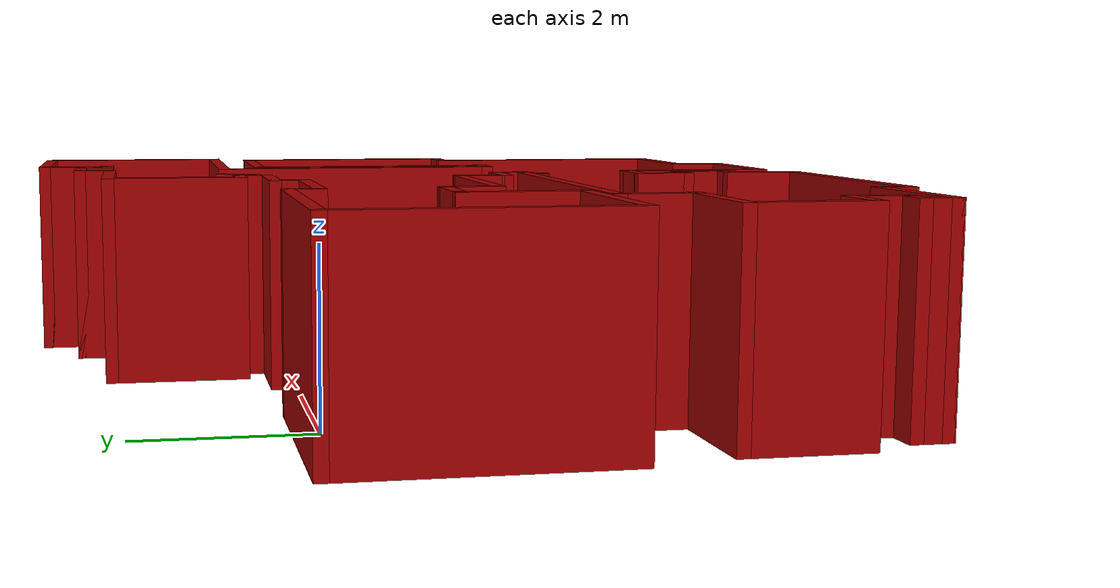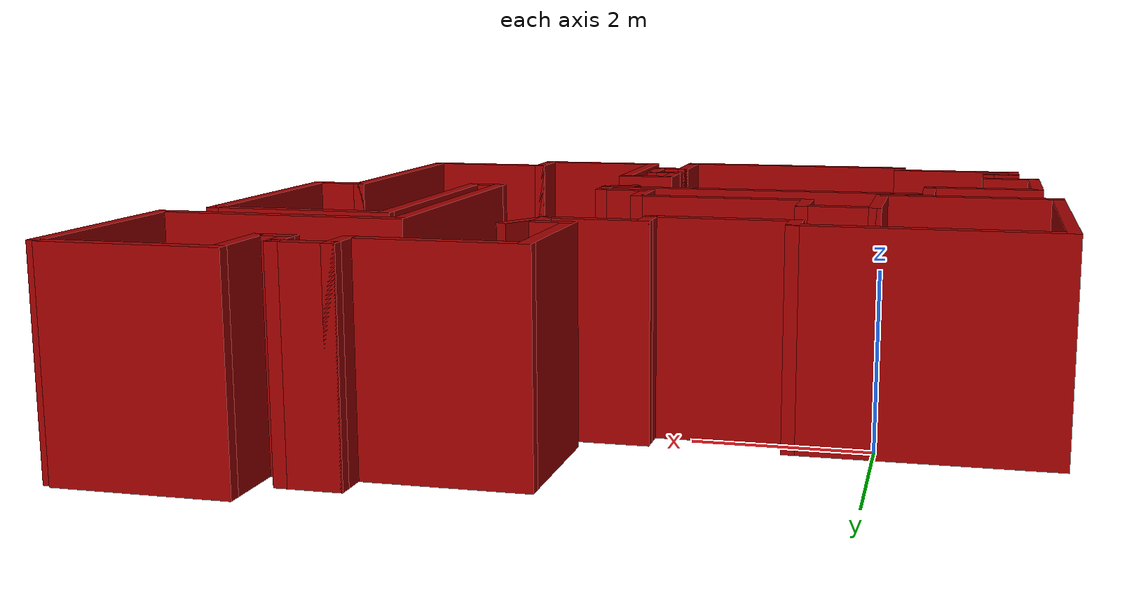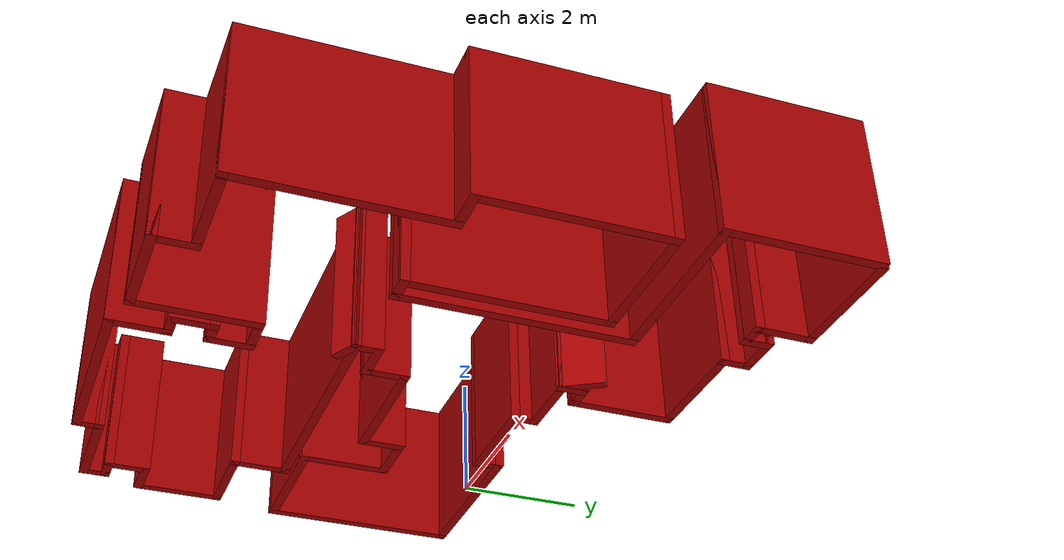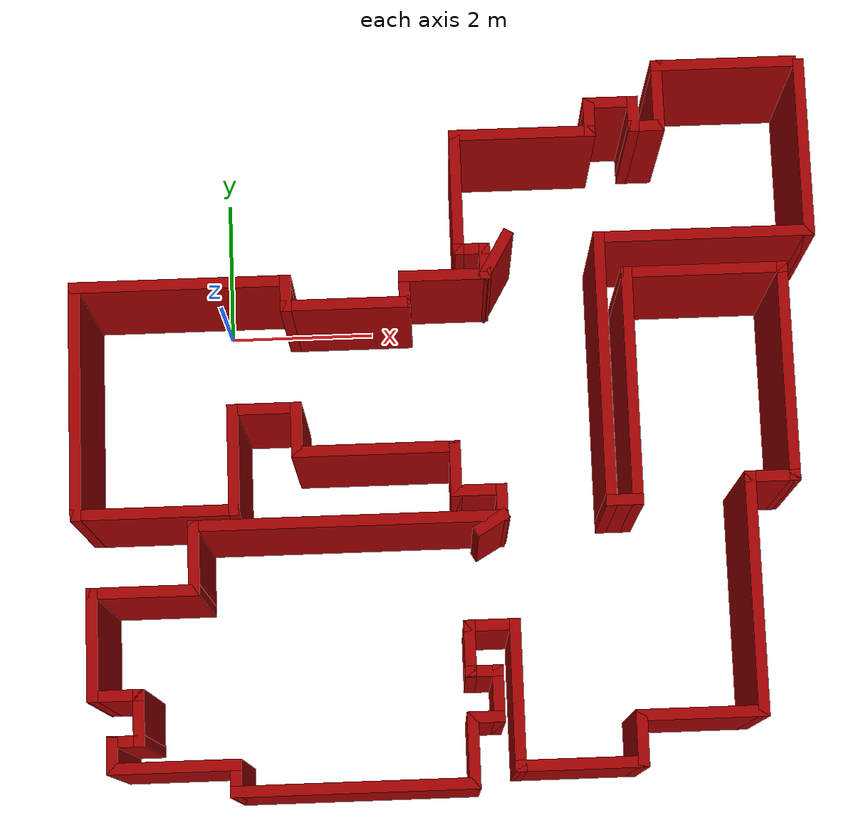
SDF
<?xml version='1.0'?>
<sdf version='1.6'>
  <model name='map_139'>
    <pose frame=''>3.03123 -1.74659 0 0 -0 0</pose>
    <link name='Wall_0'>
      <collision name='Wall_0_Collision'>
        <geometry>
          <box>
            <size>2 0.15 2.5</size>
          </box>
        </geometry>
        <pose frame=''>0 0 1.25 0 -0 0</pose>
      </collision>
      <visual name='Wall_0_Visual'>
        <pose frame=''>0 0 1.25 0 -0 0</pose>
        <geometry>
          <box>
            <size>2 0.15 2.5</size>
          </box>
        </geometry>
        <material>
          <script>
            <uri>file://media/materials/scripts/gazebo.material</uri>
            <name>Gazebo/Grey</name>
          </script>
          <ambient>0.643137 0 0 1</ambient>
        </material>
        <meta>
          <layer>0</layer>
        </meta>
      </visual>
      <pose frame=''>3.95 4.82313 0 0 -0 3.14159</pose>
    </link>
    <link name='Wall_1'>
      <collision name='Wall_1_Collision'>
        <geometry>
          <box>
            <size>1 0.15 2.5</size>
          </box>
        </geometry>
        <pose frame=''>0 0 1.25 0 -0 0</pose>
      </collision>
      <visual name='Wall_1_Visual'>
        <pose frame=''>0 0 1.25 0 -0 0</pose>
        <geometry>
          <box>
            <size>1 0.15 2.5</size>
          </box>
        </geometry>
        <material>
          <script>
            <uri>file://media/materials/scripts/gazebo.material</uri>
            <name>Gazebo/Grey</name>
          </script>
          <ambient>0.643137 0 0 1</ambient>
        </material>
        <meta>
          <layer>0</layer>
        </meta>
      </visual>
      <pose frame=''>3.025 4.39813 0 0 -0 -1.5708</pose>
    </link>
    <link name='Wall_10'>
      <collision name='Wall_10_Collision'>
        <geometry>
          <box>
            <size>2 0.15 2.5</size>
          </box>
        </geometry>
        <pose frame=''>0 0 1.25 0 -0 0</pose>
      </collision>
      <visual name='Wall_10_Visual'>
        <pose frame=''>0 0 1.25 0 -0 0</pose>
        <geometry>
          <box>
            <size>2 0.15 2.5</size>
          </box>
        </geometry>
        <material>
          <script>
            <uri>file://media/materials/scripts/gazebo.material</uri>
            <name>Gazebo/Grey</name>
          </script>
          <ambient>0.643137 0 0 1</ambient>
        </material>
        <meta>
          <layer>0</layer>
        </meta>
      </visual>
      <pose frame=''>1.15 3.92687 0 0 -0 3.14159</pose>
    </link>
    <link name='Wall_11'>
      <collision name='Wall_11_Collision'>
        <geometry>
          <box>
            <size>1.75 0.15 2.5</size>
          </box>
        </geometry>
        <pose frame=''>0 0 1.25 0 -0 0</pose>
      </collision>
      <visual name='Wall_11_Visual'>
        <pose frame=''>0 0 1.25 0 -0 0</pose>
        <geometry>
          <box>
            <size>1.75 0.15 2.5</size>
          </box>
        </geometry>
        <material>
          <script>
            <uri>file://media/materials/scripts/gazebo.material</uri>
            <name>Gazebo/Grey</name>
          </script>
          <ambient>0.643137 0 0 1</ambient>
        </material>
        <meta>
          <layer>0</layer>
        </meta>
      </visual>
      <pose frame=''>0.225 3.12687 0 0 -0 -1.5708</pose>
    </link>
    <link name='Wall_12'>
      <collision name='Wall_12_Collision'>
        <geometry>
          <box>
            <size>0.5 0.15 2.5</size>
          </box>
        </geometry>
        <pose frame=''>0 0 1.25 0 -0 0</pose>
      </collision>
      <visual name='Wall_12_Visual'>
        <pose frame=''>0 0 1.25 0 -0 0</pose>
        <geometry>
          <box>
            <size>0.5 0.15 2.5</size>
          </box>
        </geometry>
        <material>
          <script>
            <uri>file://media/materials/scripts/gazebo.material</uri>
            <name>Gazebo/Grey</name>
          </script>
          <ambient>0.643137 0 0 1</ambient>
        </material>
        <meta>
          <layer>0</layer>
        </meta>
      </visual>
      <pose frame=''>0.4 2.32687 0 0 -0 0</pose>
    </link>
    <link name='Wall_15'>
      <collision name='Wall_15_Collision'>
        <geometry>
          <box>
            <size>0.5 0.15 2.5</size>
          </box>
        </geometry>
        <pose frame=''>0 0 1.25 0 -0 0</pose>
      </collision>
      <visual name='Wall_15_Visual'>
        <pose frame=''>0 0 1.25 0 -0 0</pose>
        <geometry>
          <box>
            <size>0.5 0.15 2.5</size>
          </box>
        </geometry>
        <material>
          <script>
            <uri>file://media/materials/scripts/gazebo.material</uri>
            <name>Gazebo/Grey</name>
          </script>
          <ambient>0.643137 0 0 1</ambient>
        </material>
        <meta>
          <layer>0</layer>
        </meta>
      </visual>
      <pose frame=''>0.575 2.15187 0 0 -0 -1.5708</pose>
    </link>
    <link name='Wall_16'>
      <collision name='Wall_16_Collision'>
        <geometry>
          <box>
            <size>1.25 0.15 2.5</size>
          </box>
        </geometry>
        <pose frame=''>0 0 1.25 0 -0 0</pose>
      </collision>
      <visual name='Wall_16_Visual'>
        <pose frame=''>0 0 1.25 0 -0 0</pose>
        <geometry>
          <box>
            <size>1.25 0.15 2.5</size>
          </box>
        </geometry>
        <material>
          <script>
            <uri>file://media/materials/scripts/gazebo.material</uri>
            <name>Gazebo/Grey</name>
          </script>
          <ambient>0.643137 0 0 1</ambient>
        </material>
        <meta>
          <layer>0</layer>
        </meta>
      </visual>
      <pose frame=''>0.025 1.97687 0 0 -0 3.14159</pose>
    </link>
    <link name='Wall_17'>
      <collision name='Wall_17_Collision'>
        <geometry>
          <box>
            <size>0.5 0.15 2.5</size>
          </box>
        </geometry>
        <pose frame=''>0 0 1.25 0 -0 0</pose>
      </collision>
      <visual name='Wall_17_Visual'>
        <pose frame=''>0 0 1.25 0 -0 0</pose>
        <geometry>
          <box>
            <size>0.5 0.15 2.5</size>
          </box>
        </geometry>
        <material>
          <script>
            <uri>file://media/materials/scripts/gazebo.material</uri>
            <name>Gazebo/Grey</name>
          </script>
          <ambient>0.643137 0 0 1</ambient>
        </material>
        <meta>
          <layer>0</layer>
        </meta>
      </visual>
      <pose frame=''>-0.525 1.80187 0 0 -0 -1.5708</pose>
    </link>
    <link name='Wall_18'>
      <collision name='Wall_18_Collision'>
        <geometry>
          <box>
            <size>1.75 0.15 2.5</size>
          </box>
        </geometry>
        <pose frame=''>0 0 1.25 0 -0 0</pose>
      </collision>
      <visual name='Wall_18_Visual'>
        <pose frame=''>0 0 1.25 0 -0 0</pose>
        <geometry>
          <box>
            <size>1.75 0.15 2.5</size>
          </box>
        </geometry>
        <material>
          <script>
            <uri>file://media/materials/scripts/gazebo.material</uri>
            <name>Gazebo/Grey</name>
          </script>
          <ambient>0.643137 0 0 1</ambient>
        </material>
        <meta>
          <layer>0</layer>
        </meta>
      </visual>
      <pose frame=''>-1.325 1.62687 0 0 -0 3.14159</pose>
    </link>
    <link name='Wall_19'>
      <collision name='Wall_19_Collision'>
        <geometry>
          <box>
            <size>0.5 0.15 2.5</size>
          </box>
        </geometry>
        <pose frame=''>0 0 1.25 0 -0 0</pose>
      </collision>
      <visual name='Wall_19_Visual'>
        <pose frame=''>0 0 1.25 0 -0 0</pose>
        <geometry>
          <box>
            <size>0.5 0.15 2.5</size>
          </box>
        </geometry>
        <material>
          <script>
            <uri>file://media/materials/scripts/gazebo.material</uri>
            <name>Gazebo/Grey</name>
          </script>
          <ambient>0.643137 0 0 1</ambient>
        </material>
        <meta>
          <layer>0</layer>
        </meta>
      </visual>
      <pose frame=''>-2.125 1.80187 0 0 -0 1.5708</pose>
    </link>
    <link name='Wall_2'>
      <collision name='Wall_2_Collision'>
        <geometry>
          <box>
            <size>0.5 0.15 2.5</size>
          </box>
        </geometry>
        <pose frame=''>0 0 1.25 0 -0 0</pose>
      </collision>
      <visual name='Wall_2_Visual'>
        <pose frame=''>0 0 1.25 0 -0 0</pose>
        <geometry>
          <box>
            <size>0.5 0.15 2.5</size>
          </box>
        </geometry>
        <material>
          <script>
            <uri>file://media/materials/scripts/gazebo.material</uri>
            <name>Gazebo/Grey</name>
          </script>
          <ambient>0.643137 0 0 1</ambient>
        </material>
        <meta>
          <layer>0</layer>
        </meta>
      </visual>
      <pose frame=''>2.85 3.97313 0 0 -0 3.14159</pose>
    </link>
    <link name='Wall_20'>
      <collision name='Wall_20_Collision'>
        <geometry>
          <box>
            <size>3 0.15 2.5</size>
          </box>
        </geometry>
        <pose frame=''>0 0 1.25 0 -0 0</pose>
      </collision>
      <visual name='Wall_20_Visual'>
        <pose frame=''>0 0 1.25 0 -0 0</pose>
        <geometry>
          <box>
            <size>3 0.15 2.5</size>
          </box>
        </geometry>
        <material>
          <script>
            <uri>file://media/materials/scripts/gazebo.material</uri>
            <name>Gazebo/Grey</name>
          </script>
          <ambient>0.643137 0 0 1</ambient>
        </material>
        <meta>
          <layer>0</layer>
        </meta>
      </visual>
      <pose frame=''>-3.55 1.97687 0 0 -0 3.14159</pose>
    </link>
    <link name='Wall_21'>
      <collision name='Wall_21_Collision'>
        <geometry>
          <box>
            <size>3.25 0.15 2.5</size>
          </box>
        </geometry>
        <pose frame=''>0 0 1.25 0 -0 0</pose>
      </collision>
      <visual name='Wall_21_Visual'>
        <pose frame=''>0 0 1.25 0 -0 0</pose>
        <geometry>
          <box>
            <size>3.25 0.15 2.5</size>
          </box>
        </geometry>
        <material>
          <script>
            <uri>file://media/materials/scripts/gazebo.material</uri>
            <name>Gazebo/Grey</name>
          </script>
          <ambient>0.643137 0 0 1</ambient>
        </material>
        <meta>
          <layer>0</layer>
        </meta>
      </visual>
      <pose frame=''>-4.975 0.426869 0 0 -0 -1.5708</pose>
    </link>
    <link name='Wall_22'>
      <collision name='Wall_22_Collision'>
        <geometry>
          <box>
            <size>2.25 0.15 2.5</size>
          </box>
        </geometry>
        <pose frame=''>0 0 1.25 0 -0 0</pose>
      </collision>
      <visual name='Wall_22_Visual'>
        <pose frame=''>0 0 1.25 0 -0 0</pose>
        <geometry>
          <box>
            <size>2.25 0.15 2.5</size>
          </box>
        </geometry>
        <material>
          <script>
            <uri>file://media/materials/scripts/gazebo.material</uri>
            <name>Gazebo/Grey</name>
          </script>
          <ambient>0.643137 0 0 1</ambient>
        </material>
        <meta>
          <layer>0</layer>
        </meta>
      </visual>
      <pose frame=''>-3.925 -1.12313 0 0 -0 0</pose>
    </link>
    <link name='Wall_23'>
      <collision name='Wall_23_Collision'>
        <geometry>
          <box>
            <size>1.5 0.15 2.5</size>
          </box>
        </geometry>
        <pose frame=''>0 0 1.25 0 -0 0</pose>
      </collision>
      <visual name='Wall_23_Visual'>
        <pose frame=''>0 0 1.25 0 -0 0</pose>
        <geometry>
          <box>
            <size>1.5 0.15 2.5</size>
          </box>
        </geometry>
        <material>
          <script>
            <uri>file://media/materials/scripts/gazebo.material</uri>
            <name>Gazebo/Grey</name>
          </script>
          <ambient>0.643137 0 0 1</ambient>
        </material>
        <meta>
          <layer>0</layer>
        </meta>
      </visual>
      <pose frame=''>-2.875 -0.448131 0 0 -0 1.5708</pose>
    </link>
    <link name='Wall_24'>
      <collision name='Wall_24_Collision'>
        <geometry>
          <box>
            <size>1 0.15 2.5</size>
          </box>
        </geometry>
        <pose frame=''>0 0 1.25 0 -0 0</pose>
      </collision>
      <visual name='Wall_24_Visual'>
        <pose frame=''>0 0 1.25 0 -0 0</pose>
        <geometry>
          <box>
            <size>1 0.15 2.5</size>
          </box>
        </geometry>
        <material>
          <script>
            <uri>file://media/materials/scripts/gazebo.material</uri>
            <name>Gazebo/Grey</name>
          </script>
          <ambient>0.643137 0 0 1</ambient>
        </material>
        <meta>
          <layer>0</layer>
        </meta>
      </visual>
      <pose frame=''>-2.45 0.226869 0 0 -0 0</pose>
    </link>
    <link name='Wall_25'>
      <collision name='Wall_25_Collision'>
        <geometry>
          <box>
            <size>0.75 0.15 2.5</size>
          </box>
        </geometry>
        <pose frame=''>0 0 1.25 0 -0 0</pose>
      </collision>
      <visual name='Wall_25_Visual'>
        <pose frame=''>0 0 1.25 0 -0 0</pose>
        <geometry>
          <box>
            <size>0.75 0.15 2.5</size>
          </box>
        </geometry>
        <material>
          <script>
            <uri>file://media/materials/scripts/gazebo.material</uri>
            <name>Gazebo/Grey</name>
          </script>
          <ambient>0.643137 0 0 1</ambient>
        </material>
        <meta>
          <layer>0</layer>
        </meta>
      </visual>
      <pose frame=''>-2.025 -0.073131 0 0 -0 -1.5708</pose>
    </link>
    <link name='Wall_26'>
      <collision name='Wall_26_Collision'>
        <geometry>
          <box>
            <size>2.25 0.15 2.5</size>
          </box>
        </geometry>
        <pose frame=''>0 0 1.25 0 -0 0</pose>
      </collision>
      <visual name='Wall_26_Visual'>
        <pose frame=''>0 0 1.25 0 -0 0</pose>
        <geometry>
          <box>
            <size>2.25 0.15 2.5</size>
          </box>
        </geometry>
        <material>
          <script>
            <uri>file://media/materials/scripts/gazebo.material</uri>
            <name>Gazebo/Grey</name>
          </script>
          <ambient>0.643137 0 0 1</ambient>
        </material>
        <meta>
          <layer>0</layer>
        </meta>
      </visual>
      <pose frame=''>-0.975 -0.373131 0 0 -0 0</pose>
    </link>
    <link name='Wall_27'>
      <collision name='Wall_27_Collision'>
        <geometry>
          <box>
            <size>0.75 0.15 2.5</size>
          </box>
        </geometry>
        <pose frame=''>0 0 1.25 0 -0 0</pose>
      </collision>
      <visual name='Wall_27_Visual'>
        <pose frame=''>0 0 1.25 0 -0 0</pose>
        <geometry>
          <box>
            <size>0.75 0.15 2.5</size>
          </box>
        </geometry>
        <material>
          <script>
            <uri>file://media/materials/scripts/gazebo.material</uri>
            <name>Gazebo/Grey</name>
          </script>
          <ambient>0.643137 0 0 1</ambient>
        </material>
        <meta>
          <layer>0</layer>
        </meta>
      </visual>
      <pose frame=''>0.075 -0.673131 0 0 -0 -1.5708</pose>
    </link>
    <link name='Wall_28'>
      <collision name='Wall_28_Collision'>
        <geometry>
          <box>
            <size>0.75 0.15 2.5</size>
          </box>
        </geometry>
        <pose frame=''>0 0 1.25 0 -0 0</pose>
      </collision>
      <visual name='Wall_28_Visual'>
        <pose frame=''>0 0 1.25 0 -0 0</pose>
        <geometry>
          <box>
            <size>0.75 0.15 2.5</size>
          </box>
        </geometry>
        <material>
          <script>
            <uri>file://media/materials/scripts/gazebo.material</uri>
            <name>Gazebo/Grey</name>
          </script>
          <ambient>0.643137 0 0 1</ambient>
        </material>
        <meta>
          <layer>0</layer>
        </meta>
      </visual>
      <pose frame=''>0.375 -0.973131 0 0 -0 0</pose>
    </link>
    <link name='Wall_29'>
      <collision name='Wall_29_Collision'>
        <geometry>
          <box>
            <size>0.5 0.15 2.5</size>
          </box>
        </geometry>
        <pose frame=''>0 0 1.25 0 -0 0</pose>
      </collision>
      <visual name='Wall_29_Visual'>
        <pose frame=''>0 0 1.25 0 -0 0</pose>
        <geometry>
          <box>
            <size>0.5 0.15 2.5</size>
          </box>
        </geometry>
        <material>
          <script>
            <uri>file://media/materials/scripts/gazebo.material</uri>
            <name>Gazebo/Grey</name>
          </script>
          <ambient>0.643137 0 0 1</ambient>
        </material>
        <meta>
          <layer>0</layer>
        </meta>
      </visual>
      <pose frame=''>0.675 -1.14813 0 0 -0 -1.5708</pose>
    </link>
    <link name='Wall_3'>
      <collision name='Wall_3_Collision'>
        <geometry>
          <box>
            <size>0.5 0.15 2.5</size>
          </box>
        </geometry>
        <pose frame=''>0 0 1.25 0 -0 0</pose>
      </collision>
      <visual name='Wall_3_Visual'>
        <pose frame=''>0 0 1.25 0 -0 0</pose>
        <geometry>
          <box>
            <size>0.5 0.15 2.5</size>
          </box>
        </geometry>
        <material>
          <script>
            <uri>file://media/materials/scripts/gazebo.material</uri>
            <name>Gazebo/Grey</name>
          </script>
          <ambient>0.643137 0 0 1</ambient>
        </material>
        <meta>
          <layer>0</layer>
        </meta>
      </visual>
      <pose frame=''>2.675 4.14813 0 0 -0 1.5708</pose>
    </link>
    <link name='Wall_30'>
      <collision name='Wall_30_Collision'>
        <geometry>
          <box>
            <size>4.25 0.15 2.5</size>
          </box>
        </geometry>
        <pose frame=''>0 0 1.25 0 -0 0</pose>
      </collision>
      <visual name='Wall_30_Visual'>
        <pose frame=''>0 0 1.25 0 -0 0</pose>
        <geometry>
          <box>
            <size>4.25 0.15 2.5</size>
          </box>
        </geometry>
        <material>
          <script>
            <uri>file://media/materials/scripts/gazebo.material</uri>
            <name>Gazebo/Grey</name>
          </script>
          <ambient>0.643137 0 0 1</ambient>
        </material>
        <meta>
          <layer>0</layer>
        </meta>
      </visual>
      <pose frame=''>-1.375 -1.32313 0 0 -0 3.14159</pose>
    </link>
    <link name='Wall_31'>
      <collision name='Wall_31_Collision'>
        <geometry>
          <box>
            <size>1 0.15 2.5</size>
          </box>
        </geometry>
        <pose frame=''>0 0 1.25 0 -0 0</pose>
      </collision>
      <visual name='Wall_31_Visual'>
        <pose frame=''>0 0 1.25 0 -0 0</pose>
        <geometry>
          <box>
            <size>1 0.15 2.5</size>
          </box>
        </geometry>
        <material>
          <script>
            <uri>file://media/materials/scripts/gazebo.material</uri>
            <name>Gazebo/Grey</name>
          </script>
          <ambient>0.643137 0 0 1</ambient>
        </material>
        <meta>
          <layer>0</layer>
        </meta>
      </visual>
      <pose frame=''>-3.425 -1.74813 0 0 -0 -1.5708</pose>
    </link>
    <link name='Wall_32'>
      <collision name='Wall_32_Collision'>
        <geometry>
          <box>
            <size>1.5 0.15 2.5</size>
          </box>
        </geometry>
        <pose frame=''>0 0 1.25 0 -0 0</pose>
      </collision>
      <visual name='Wall_32_Visual'>
        <pose frame=''>0 0 1.25 0 -0 0</pose>
        <geometry>
          <box>
            <size>1.5 0.15 2.5</size>
          </box>
        </geometry>
        <material>
          <script>
            <uri>file://media/materials/scripts/gazebo.material</uri>
            <name>Gazebo/Grey</name>
          </script>
          <ambient>0.643137 0 0 1</ambient>
        </material>
        <meta>
          <layer>0</layer>
        </meta>
      </visual>
      <pose frame=''>-4.1 -2.17313 0 0 -0 3.14159</pose>
    </link>
    <link name='Wall_33'>
      <collision name='Wall_33_Collision'>
        <geometry>
          <box>
            <size>1.5 0.15 2.5</size>
          </box>
        </geometry>
        <pose frame=''>0 0 1.25 0 -0 0</pose>
      </collision>
      <visual name='Wall_33_Visual'>
        <pose frame=''>0 0 1.25 0 -0 0</pose>
        <geometry>
          <box>
            <size>1.5 0.15 2.5</size>
          </box>
        </geometry>
        <material>
          <script>
            <uri>file://media/materials/scripts/gazebo.material</uri>
            <name>Gazebo/Grey</name>
          </script>
          <ambient>0.643137 0 0 1</ambient>
        </material>
        <meta>
          <layer>0</layer>
        </meta>
      </visual>
      <pose frame=''>-4.775 -2.84813 0 0 -0 -1.5708</pose>
    </link>
    <link name='Wall_34'>
      <collision name='Wall_34_Collision'>
        <geometry>
          <box>
            <size>0.75 0.15 2.5</size>
          </box>
        </geometry>
        <pose frame=''>0 0 1.25 0 -0 0</pose>
      </collision>
      <visual name='Wall_34_Visual'>
        <pose frame=''>0 0 1.25 0 -0 0</pose>
        <geometry>
          <box>
            <size>0.75 0.15 2.5</size>
          </box>
        </geometry>
        <material>
          <script>
            <uri>file://media/materials/scripts/gazebo.material</uri>
            <name>Gazebo/Grey</name>
          </script>
          <ambient>0.643137 0 0 1</ambient>
        </material>
        <meta>
          <layer>0</layer>
        </meta>
      </visual>
      <pose frame=''>-4.475 -3.52313 0 0 -0 0</pose>
    </link>
    <link name='Wall_35'>
      <collision name='Wall_35_Collision'>
        <geometry>
          <box>
            <size>0.75 0.15 2.5</size>
          </box>
        </geometry>
        <pose frame=''>0 0 1.25 0 -0 0</pose>
      </collision>
      <visual name='Wall_35_Visual'>
        <pose frame=''>0 0 1.25 0 -0 0</pose>
        <geometry>
          <box>
            <size>0.75 0.15 2.5</size>
          </box>
        </geometry>
        <material>
          <script>
            <uri>file://media/materials/scripts/gazebo.material</uri>
            <name>Gazebo/Grey</name>
          </script>
          <ambient>0.643137 0 0 1</ambient>
        </material>
        <meta>
          <layer>0</layer>
        </meta>
      </visual>
      <pose frame=''>-4.175 -3.82313 0 0 -0 -1.5708</pose>
    </link>
    <link name='Wall_36'>
      <collision name='Wall_36_Collision'>
        <geometry>
          <box>
            <size>0.5 0.15 2.5</size>
          </box>
        </geometry>
        <pose frame=''>0 0 1.25 0 -0 0</pose>
      </collision>
      <visual name='Wall_36_Visual'>
        <pose frame=''>0 0 1.25 0 -0 0</pose>
        <geometry>
          <box>
            <size>0.5 0.15 2.5</size>
          </box>
        </geometry>
        <material>
          <script>
            <uri>file://media/materials/scripts/gazebo.material</uri>
            <name>Gazebo/Grey</name>
          </script>
          <ambient>0.643137 0 0 1</ambient>
        </material>
        <meta>
          <layer>0</layer>
        </meta>
      </visual>
      <pose frame=''>-4.35 -4.12313 0 0 -0 3.14159</pose>
    </link>
    <link name='Wall_37'>
      <collision name='Wall_37_Collision'>
        <geometry>
          <box>
            <size>0.5 0.15 2.5</size>
          </box>
        </geometry>
        <pose frame=''>0 0 1.25 0 -0 0</pose>
      </collision>
      <visual name='Wall_37_Visual'>
        <pose frame=''>0 0 1.25 0 -0 0</pose>
        <geometry>
          <box>
            <size>0.5 0.15 2.5</size>
          </box>
        </geometry>
        <material>
          <script>
            <uri>file://media/materials/scripts/gazebo.material</uri>
            <name>Gazebo/Grey</name>
          </script>
          <ambient>0.643137 0 0 1</ambient>
        </material>
        <meta>
          <layer>0</layer>
        </meta>
      </visual>
      <pose frame=''>-4.525 -4.29813 0 0 -0 -1.5708</pose>
    </link>
    <link name='Wall_38'>
      <collision name='Wall_38_Collision'>
        <geometry>
          <box>
            <size>1.75 0.15 2.5</size>
          </box>
        </geometry>
        <pose frame=''>0 0 1.25 0 -0 0</pose>
      </collision>
      <visual name='Wall_38_Visual'>
        <pose frame=''>0 0 1.25 0 -0 0</pose>
        <geometry>
          <box>
            <size>1.75 0.15 2.5</size>
          </box>
        </geometry>
        <material>
          <script>
            <uri>file://media/materials/scripts/gazebo.material</uri>
            <name>Gazebo/Grey</name>
          </script>
          <ambient>0.643137 0 0 1</ambient>
        </material>
        <meta>
          <layer>0</layer>
        </meta>
      </visual>
      <pose frame=''>-3.725 -4.47313 0 0 -0 0</pose>
    </link>
    <link name='Wall_39'>
      <collision name='Wall_39_Collision'>
        <geometry>
          <box>
            <size>0.5 0.15 2.5</size>
          </box>
        </geometry>
        <pose frame=''>0 0 1.25 0 -0 0</pose>
      </collision>
      <visual name='Wall_39_Visual'>
        <pose frame=''>0 0 1.25 0 -0 0</pose>
        <geometry>
          <box>
            <size>0.5 0.15 2.5</size>
          </box>
        </geometry>
        <material>
          <script>
            <uri>file://media/materials/scripts/gazebo.material</uri>
            <name>Gazebo/Grey</name>
          </script>
          <ambient>0.643137 0 0 1</ambient>
        </material>
        <meta>
          <layer>0</layer>
        </meta>
      </visual>
      <pose frame=''>-2.925 -4.64813 0 0 -0 -1.5708</pose>
    </link>
    <link name='Wall_4'>
      <collision name='Wall_4_Collision'>
        <geometry>
          <box>
            <size>0.75 0.15 2.5</size>
          </box>
        </geometry>
        <pose frame=''>0 0 1.25 0 -0 0</pose>
      </collision>
      <visual name='Wall_4_Visual'>
        <pose frame=''>0 0 1.25 0 -0 0</pose>
        <geometry>
          <box>
            <size>0.75 0.15 2.5</size>
          </box>
        </geometry>
        <material>
          <script>
            <uri>file://media/materials/scripts/gazebo.material</uri>
            <name>Gazebo/Grey</name>
          </script>
          <ambient>0.643137 0 0 1</ambient>
        </material>
        <meta>
          <layer>0</layer>
        </meta>
      </visual>
      <pose frame=''>2.375 4.32313 0 0 -0 3.14159</pose>
    </link>
    <link name='Wall_40'>
      <collision name='Wall_40_Collision'>
        <geometry>
          <box>
            <size>3.25 0.15 2.5</size>
          </box>
        </geometry>
        <pose frame=''>0 0 1.25 0 -0 0</pose>
      </collision>
      <visual name='Wall_40_Visual'>
        <pose frame=''>0 0 1.25 0 -0 0</pose>
        <geometry>
          <box>
            <size>3.25 0.15 2.5</size>
          </box>
        </geometry>
        <material>
          <script>
            <uri>file://media/materials/scripts/gazebo.material</uri>
            <name>Gazebo/Grey</name>
          </script>
          <ambient>0.643137 0 0 1</ambient>
        </material>
        <meta>
          <layer>0</layer>
        </meta>
      </visual>
      <pose frame=''>-1.375 -4.82313 0 0 -0 0</pose>
    </link>
    <link name='Wall_41'>
      <collision name='Wall_41_Collision'>
        <geometry>
          <box>
            <size>1 0.15 2.5</size>
          </box>
        </geometry>
        <pose frame=''>0 0 1.25 0 -0 0</pose>
      </collision>
      <visual name='Wall_41_Visual'>
        <pose frame=''>0 0 1.25 0 -0 0</pose>
        <geometry>
          <box>
            <size>1 0.15 2.5</size>
          </box>
        </geometry>
        <material>
          <script>
            <uri>file://media/materials/scripts/gazebo.material</uri>
            <name>Gazebo/Grey</name>
          </script>
          <ambient>0.643137 0 0 1</ambient>
        </material>
        <meta>
          <layer>0</layer>
        </meta>
      </visual>
      <pose frame=''>0.175 -4.39813 0 0 -0 1.5708</pose>
    </link>
    <link name='Wall_42'>
      <collision name='Wall_42_Collision'>
        <geometry>
          <box>
            <size>0.5 0.15 2.5</size>
          </box>
        </geometry>
        <pose frame=''>0 0 1.25 0 -0 0</pose>
      </collision>
      <visual name='Wall_42_Visual'>
        <pose frame=''>0 0 1.25 0 -0 0</pose>
        <geometry>
          <box>
            <size>0.5 0.15 2.5</size>
          </box>
        </geometry>
        <material>
          <script>
            <uri>file://media/materials/scripts/gazebo.material</uri>
            <name>Gazebo/Grey</name>
          </script>
          <ambient>0.643137 0 0 1</ambient>
        </material>
        <meta>
          <layer>0</layer>
        </meta>
      </visual>
      <pose frame=''>0.35 -3.97313 0 0 -0 0</pose>
    </link>
    <link name='Wall_43'>
      <collision name='Wall_43_Collision'>
        <geometry>
          <box>
            <size>0.75 0.15 2.5</size>
          </box>
        </geometry>
        <pose frame=''>0 0 1.25 0 -0 0</pose>
      </collision>
      <visual name='Wall_43_Visual'>
        <pose frame=''>0 0 1.25 0 -0 0</pose>
        <geometry>
          <box>
            <size>0.75 0.15 2.5</size>
          </box>
        </geometry>
        <material>
          <script>
            <uri>file://media/materials/scripts/gazebo.material</uri>
            <name>Gazebo/Grey</name>
          </script>
          <ambient>0.643137 0 0 1</ambient>
        </material>
        <meta>
          <layer>0</layer>
        </meta>
      </visual>
      <pose frame=''>0.525 -3.67313 0 0 -0 1.5708</pose>
    </link>
    <link name='Wall_44'>
      <collision name='Wall_44_Collision'>
        <geometry>
          <box>
            <size>0.5 0.15 2.5</size>
          </box>
        </geometry>
        <pose frame=''>0 0 1.25 0 -0 0</pose>
      </collision>
      <visual name='Wall_44_Visual'>
        <pose frame=''>0 0 1.25 0 -0 0</pose>
        <geometry>
          <box>
            <size>0.5 0.15 2.5</size>
          </box>
        </geometry>
        <material>
          <script>
            <uri>file://media/materials/scripts/gazebo.material</uri>
            <name>Gazebo/Grey</name>
          </script>
          <ambient>0.643137 0 0 1</ambient>
        </material>
        <meta>
          <layer>0</layer>
        </meta>
      </visual>
      <pose frame=''>0.35 -3.37313 0 0 -0 3.14159</pose>
    </link>
    <link name='Wall_45'>
      <collision name='Wall_45_Collision'>
        <geometry>
          <box>
            <size>0.75 0.15 2.5</size>
          </box>
        </geometry>
        <pose frame=''>0 0 1.25 0 -0 0</pose>
      </collision>
      <visual name='Wall_45_Visual'>
        <pose frame=''>0 0 1.25 0 -0 0</pose>
        <geometry>
          <box>
            <size>0.75 0.15 2.5</size>
          </box>
        </geometry>
        <material>
          <script>
            <uri>file://media/materials/scripts/gazebo.material</uri>
            <name>Gazebo/Grey</name>
          </script>
          <ambient>0.643137 0 0 1</ambient>
        </material>
        <meta>
          <layer>0</layer>
        </meta>
      </visual>
      <pose frame=''>0.175 -3.07313 0 0 -0 1.5708</pose>
    </link>
    <link name='Wall_46'>
      <collision name='Wall_46_Collision'>
        <geometry>
          <box>
            <size>0.75 0.15 2.5</size>
          </box>
        </geometry>
        <pose frame=''>0 0 1.25 0 -0 0</pose>
      </collision>
      <visual name='Wall_46_Visual'>
        <pose frame=''>0 0 1.25 0 -0 0</pose>
        <geometry>
          <box>
            <size>0.75 0.15 2.5</size>
          </box>
        </geometry>
        <material>
          <script>
            <uri>file://media/materials/scripts/gazebo.material</uri>
            <name>Gazebo/Grey</name>
          </script>
          <ambient>0.643137 0 0 1</ambient>
        </material>
        <meta>
          <layer>0</layer>
        </meta>
      </visual>
      <pose frame=''>0.475 -2.77313 0 0 -0 0</pose>
    </link>
    <link name='Wall_47'>
      <collision name='Wall_47_Collision'>
        <geometry>
          <box>
            <size>2 0.15 2.5</size>
          </box>
        </geometry>
        <pose frame=''>0 0 1.25 0 -0 0</pose>
      </collision>
      <visual name='Wall_47_Visual'>
        <pose frame=''>0 0 1.25 0 -0 0</pose>
        <geometry>
          <box>
            <size>2 0.15 2.5</size>
          </box>
        </geometry>
        <material>
          <script>
            <uri>file://media/materials/scripts/gazebo.material</uri>
            <name>Gazebo/Grey</name>
          </script>
          <ambient>0.643137 0 0 1</ambient>
        </material>
        <meta>
          <layer>0</layer>
        </meta>
      </visual>
      <pose frame=''>0.775 -3.69813 0 0 -0 -1.5708</pose>
    </link>
    <link name='Wall_48'>
      <collision name='Wall_48_Collision'>
        <geometry>
          <box>
            <size>1.75 0.15 2.5</size>
          </box>
        </geometry>
        <pose frame=''>0 0 1.25 0 -0 0</pose>
      </collision>
      <visual name='Wall_48_Visual'>
        <pose frame=''>0 0 1.25 0 -0 0</pose>
        <geometry>
          <box>
            <size>1.75 0.15 2.5</size>
          </box>
        </geometry>
        <material>
          <script>
            <uri>file://media/materials/scripts/gazebo.material</uri>
            <name>Gazebo/Grey</name>
          </script>
          <ambient>0.643137 0 0 1</ambient>
        </material>
        <meta>
          <layer>0</layer>
        </meta>
      </visual>
      <pose frame=''>1.575 -4.62313 0 0 -0 0</pose>
    </link>
    <link name='Wall_49'>
      <collision name='Wall_49_Collision'>
        <geometry>
          <box>
            <size>0.75 0.15 2.5</size>
          </box>
        </geometry>
        <pose frame=''>0 0 1.25 0 -0 0</pose>
      </collision>
      <visual name='Wall_49_Visual'>
        <pose frame=''>0 0 1.25 0 -0 0</pose>
        <geometry>
          <box>
            <size>0.75 0.15 2.5</size>
          </box>
        </geometry>
        <material>
          <script>
            <uri>file://media/materials/scripts/gazebo.material</uri>
            <name>Gazebo/Grey</name>
          </script>
          <ambient>0.643137 0 0 1</ambient>
        </material>
        <meta>
          <layer>0</layer>
        </meta>
      </visual>
      <pose frame=''>2.375 -4.32313 0 0 -0 1.5708</pose>
    </link>
    <link name='Wall_5'>
      <collision name='Wall_5_Collision'>
        <geometry>
          <box>
            <size>0.546261 0.15 2.5</size>
          </box>
        </geometry>
        <pose frame=''>0 0 1.25 0 -0 0</pose>
      </collision>
      <visual name='Wall_5_Visual'>
        <pose frame=''>0 0 1.25 0 -0 0</pose>
        <geometry>
          <box>
            <size>0.546261 0.15 2.5</size>
          </box>
        </geometry>
        <material>
          <script>
            <uri>file://media/materials/scripts/gazebo.material</uri>
            <name>Gazebo/Grey</name>
          </script>
          <ambient>0.643137 0 0 1</ambient>
        </material>
        <meta>
          <layer>0</layer>
        </meta>
      </visual>
      <pose frame=''>2.075 4.125 0 0 -0 -1.5708</pose>
    </link>
    <link name='Wall_53'>
      <collision name='Wall_53_Collision'>
        <geometry>
          <box>
            <size>1.75 0.15 2.5</size>
          </box>
        </geometry>
        <pose frame=''>0 0 1.25 0 -0 0</pose>
      </collision>
      <visual name='Wall_53_Visual'>
        <pose frame=''>0 0 1.25 0 -0 0</pose>
        <geometry>
          <box>
            <size>1.75 0.15 2.5</size>
          </box>
        </geometry>
        <material>
          <script>
            <uri>file://media/materials/scripts/gazebo.material</uri>
            <name>Gazebo/Grey</name>
          </script>
          <ambient>0.643137 0 0 1</ambient>
        </material>
        <meta>
          <layer>0</layer>
        </meta>
      </visual>
      <pose frame=''>3.175 -4.02313 0 0 -0 0</pose>
    </link>
    <link name='Wall_54'>
      <collision name='Wall_54_Collision'>
        <geometry>
          <box>
            <size>3.25 0.15 2.5</size>
          </box>
        </geometry>
        <pose frame=''>0 0 1.25 0 -0 0</pose>
      </collision>
      <visual name='Wall_54_Visual'>
        <pose frame=''>0 0 1.25 0 -0 0</pose>
        <geometry>
          <box>
            <size>3.25 0.15 2.5</size>
          </box>
        </geometry>
        <material>
          <script>
            <uri>file://media/materials/scripts/gazebo.material</uri>
            <name>Gazebo/Grey</name>
          </script>
          <ambient>0.643137 0 0 1</ambient>
        </material>
        <meta>
          <layer>0</layer>
        </meta>
      </visual>
      <pose frame=''>3.975 -2.47313 0 0 -0 1.5708</pose>
    </link>
    <link name='Wall_55'>
      <collision name='Wall_55_Collision'>
        <geometry>
          <box>
            <size>0.75 0.15 2.5</size>
          </box>
        </geometry>
        <pose frame=''>0 0 1.25 0 -0 0</pose>
      </collision>
      <visual name='Wall_55_Visual'>
        <pose frame=''>0 0 1.25 0 -0 0</pose>
        <geometry>
          <box>
            <size>0.75 0.15 2.5</size>
          </box>
        </geometry>
        <material>
          <script>
            <uri>file://media/materials/scripts/gazebo.material</uri>
            <name>Gazebo/Grey</name>
          </script>
          <ambient>0.643137 0 0 1</ambient>
        </material>
        <meta>
          <layer>0</layer>
        </meta>
      </visual>
      <pose frame=''>4.275 -0.923131 0 0 -0 0</pose>
    </link>
    <link name='Wall_56'>
      <collision name='Wall_56_Collision'>
        <geometry>
          <box>
            <size>3 0.15 2.5</size>
          </box>
        </geometry>
        <pose frame=''>0 0 1.25 0 -0 0</pose>
      </collision>
      <visual name='Wall_56_Visual'>
        <pose frame=''>0 0 1.25 0 -0 0</pose>
        <geometry>
          <box>
            <size>3 0.15 2.5</size>
          </box>
        </geometry>
        <material>
          <script>
            <uri>file://media/materials/scripts/gazebo.material</uri>
            <name>Gazebo/Grey</name>
          </script>
          <ambient>0.643137 0 0 1</ambient>
        </material>
        <meta>
          <layer>0</layer>
        </meta>
      </visual>
      <pose frame=''>4.575 0.501869 0 0 -0 1.5708</pose>
    </link>
    <link name='Wall_57'>
      <collision name='Wall_57_Collision'>
        <geometry>
          <box>
            <size>2.25 0.15 2.5</size>
          </box>
        </geometry>
        <pose frame=''>0 0 1.25 0 -0 0</pose>
      </collision>
      <visual name='Wall_57_Visual'>
        <pose frame=''>0 0 1.25 0 -0 0</pose>
        <geometry>
          <box>
            <size>2.25 0.15 2.5</size>
          </box>
        </geometry>
        <material>
          <script>
            <uri>file://media/materials/scripts/gazebo.material</uri>
            <name>Gazebo/Grey</name>
          </script>
          <ambient>0.643137 0 0 1</ambient>
        </material>
        <meta>
          <layer>0</layer>
        </meta>
      </visual>
      <pose frame=''>3.525 1.92687 0 0 -0 3.14159</pose>
    </link>
    <link name='Wall_58'>
      <collision name='Wall_58_Collision'>
        <geometry>
          <box>
            <size>3.25 0.15 2.5</size>
          </box>
        </geometry>
        <pose frame=''>0 0 1.25 0 -0 0</pose>
      </collision>
      <visual name='Wall_58_Visual'>
        <pose frame=''>0 0 1.25 0 -0 0</pose>
        <geometry>
          <box>
            <size>3.25 0.15 2.5</size>
          </box>
        </geometry>
        <material>
          <script>
            <uri>file://media/materials/scripts/gazebo.material</uri>
            <name>Gazebo/Grey</name>
          </script>
          <ambient>0.643137 0 0 1</ambient>
        </material>
        <meta>
          <layer>0</layer>
        </meta>
      </visual>
      <pose frame=''>2.475 0.376869 0 0 -0 -1.5708</pose>
    </link>
    <link name='Wall_59'>
      <collision name='Wall_59_Collision'>
        <geometry>
          <box>
            <size>0.5 0.15 2.5</size>
          </box>
        </geometry>
        <pose frame=''>0 0 1.25 0 -0 0</pose>
      </collision>
      <visual name='Wall_59_Visual'>
        <pose frame=''>0 0 1.25 0 -0 0</pose>
        <geometry>
          <box>
            <size>0.5 0.15 2.5</size>
          </box>
        </geometry>
        <material>
          <script>
            <uri>file://media/materials/scripts/gazebo.material</uri>
            <name>Gazebo/Grey</name>
          </script>
          <ambient>0.643137 0 0 1</ambient>
        </material>
        <meta>
          <layer>0</layer>
        </meta>
      </visual>
      <pose frame=''>2.3 -1.17313 0 0 -0 3.14159</pose>
    </link>
    <link name='Wall_60'>
      <collision name='Wall_60_Collision'>
        <geometry>
          <box>
            <size>3.75 0.15 2.5</size>
          </box>
        </geometry>
        <pose frame=''>0 0 1.25 0 -0 0</pose>
      </collision>
      <visual name='Wall_60_Visual'>
        <pose frame=''>0 0 1.25 0 -0 0</pose>
        <geometry>
          <box>
            <size>3.75 0.15 2.5</size>
          </box>
        </geometry>
        <material>
          <script>
            <uri>file://media/materials/scripts/gazebo.material</uri>
            <name>Gazebo/Grey</name>
          </script>
          <ambient>0.643137 0 0 1</ambient>
        </material>
        <meta>
          <layer>0</layer>
        </meta>
      </visual>
      <pose frame=''>2.125 0.626869 0 0 -0 1.5708</pose>
    </link>
    <link name='Wall_61'>
      <collision name='Wall_61_Collision'>
        <geometry>
          <box>
            <size>3 0.15 2.5</size>
          </box>
        </geometry>
        <pose frame=''>0 0 1.25 0 -0 0</pose>
      </collision>
      <visual name='Wall_61_Visual'>
        <pose frame=''>0 0 1.25 0 -0 0</pose>
        <geometry>
          <box>
            <size>3 0.15 2.5</size>
          </box>
        </geometry>
        <material>
          <script>
            <uri>file://media/materials/scripts/gazebo.material</uri>
            <name>Gazebo/Grey</name>
          </script>
          <ambient>0.643137 0 0 1</ambient>
        </material>
        <meta>
          <layer>0</layer>
        </meta>
      </visual>
      <pose frame=''>3.55 2.42687 0 0 -0 0</pose>
    </link>
    <link name='Wall_62'>
      <collision name='Wall_62_Collision'>
        <geometry>
          <box>
            <size>2.5 0.15 2.5</size>
          </box>
        </geometry>
        <pose frame=''>0 0 1.25 0 -0 0</pose>
      </collision>
      <visual name='Wall_62_Visual'>
        <pose frame=''>0 0 1.25 0 -0 0</pose>
        <geometry>
          <box>
            <size>2.5 0.15 2.5</size>
          </box>
        </geometry>
        <material>
          <script>
            <uri>file://media/materials/scripts/gazebo.material</uri>
            <name>Gazebo/Grey</name>
          </script>
          <ambient>0.643137 0 0 1</ambient>
        </material>
        <meta>
          <layer>0</layer>
        </meta>
      </visual>
      <pose frame=''>4.975 3.60187 0 0 -0 1.5708</pose>
    </link>
    <link name='Wall_64'>
      <collision name='Wall_64_Collision'>
        <geometry>
          <box>
            <size>0.75 0.15 2.5</size>
          </box>
        </geometry>
        <pose frame=''>0 0 1.25 0 -0 0</pose>
      </collision>
      <visual name='Wall_64_Visual'>
        <pose frame=''>0 0 1.25 0 -0 0</pose>
        <geometry>
          <box>
            <size>0.75 0.15 2.5</size>
          </box>
        </geometry>
        <material>
          <script>
            <uri>file://media/materials/scripts/gazebo.material</uri>
            <name>Gazebo/Grey</name>
          </script>
          <ambient>0.643137 0 0 1</ambient>
        </material>
        <meta>
          <layer>0</layer>
        </meta>
      </visual>
      <pose frame=''>0.725 2.23668 0 0 -0 1.0472</pose>
    </link>
    <link name='Wall_66'>
      <collision name='Wall_66_Collision'>
        <geometry>
          <box>
            <size>0.5 0.15 2.5</size>
          </box>
        </geometry>
        <pose frame=''>0 0 1.25 0 -0 0</pose>
      </collision>
      <visual name='Wall_66_Visual'>
        <pose frame=''>0 0 1.25 0 -0 0</pose>
        <geometry>
          <box>
            <size>0.5 0.15 2.5</size>
          </box>
        </geometry>
        <material>
          <script>
            <uri>file://media/materials/scripts/gazebo.material</uri>
            <name>Gazebo/Grey</name>
          </script>
          <ambient>0.643137 0 0 1</ambient>
        </material>
        <meta>
          <layer>0</layer>
        </meta>
      </visual>
      <pose frame=''>0.523446 -1.41063 0 0 -0 -2.61799</pose>
    </link>
    <static>1</static>
  </model>
</sdf>
